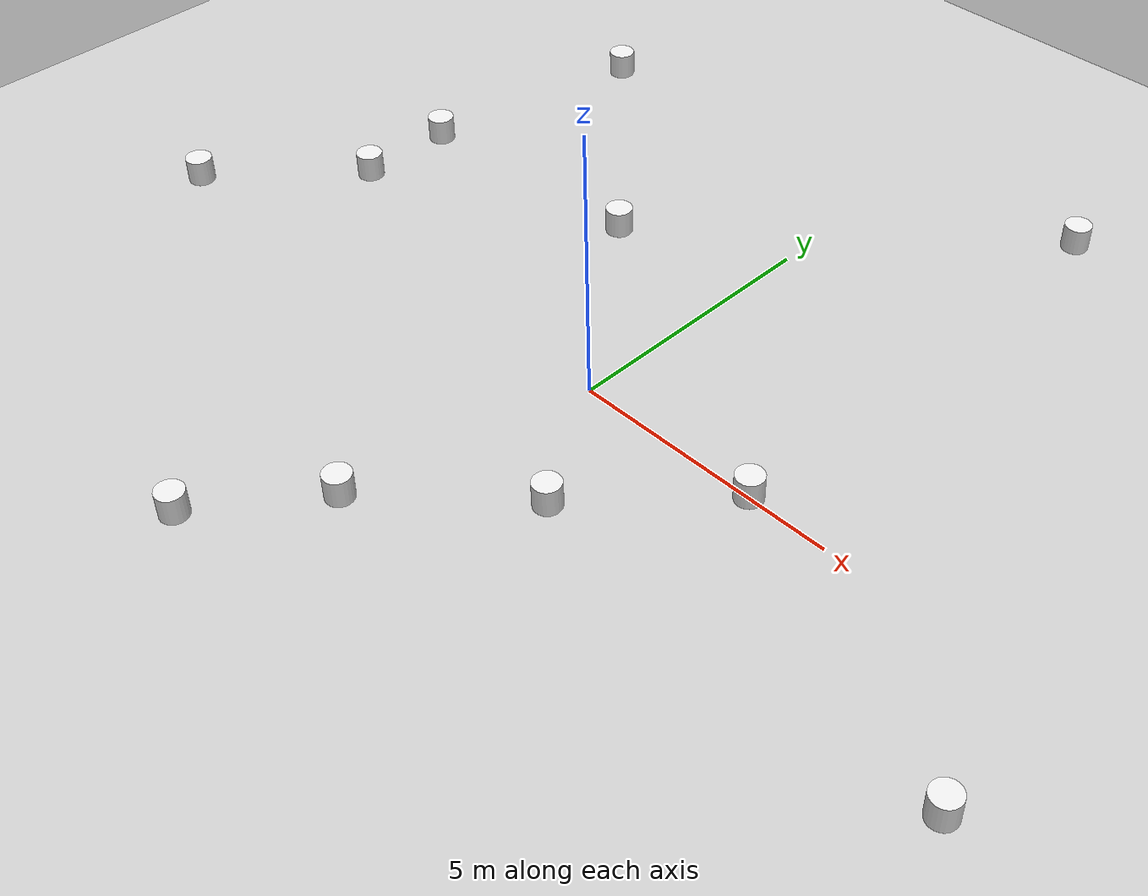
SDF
<sdf version="1.5">
 <world name="default">
  <include><uri>model://sun</uri></include>
  <include><uri>model://ground_plane</uri></include>
  <physics type="ode">
   <max_step_size>0.01</max_step_size>
   <real_time_factor>1</real_time_factor>
   <real_time_update_rate>100</real_time_update_rate>
   <gravity>0 0 -9.8</gravity>
  </physics>
  <model name="obstacle1">
   <pose>-2.8 3.5 0 0 -0 0</pose>
   <link name="obstacle1">
    <collision name="obstacle_1">
     <pose>0 0 0.25 0 0 0</pose>
     <geometry><cylinder><radius>0.25</radius><length>0.5</length></cylinder></geometry>
    </collision>
    <visual name="obstacle_1">
     <pose>0 0 0.25 0 0 0</pose>
     <geometry><cylinder><radius>0.25</radius><length>0.5</length></cylinder></geometry>
     <material>
      <script><uri>file://media/materials/scripts/gazebo.material</uri><name>Gazebo/White</name></script>
     </material>
    </visual>
   </link>
  </model>
  <model name="obstacle2">
   <pose>-7.5 1.4 0 0 -0 0</pose>
   <link name="obstacle2">
    <collision name="obstacle_1">
     <pose>0 0 0.25 0 0 0</pose>
     <geometry><cylinder><radius>0.25</radius><length>0.5</length></cylinder></geometry>
    </collision>
    <visual name="obstacle_1">
     <pose>0 0 0.25 0 0 0</pose>
     <geometry><cylinder><radius>0.25</radius><length>0.5</length></cylinder></geometry>
     <material>
      <script><uri>file://media/materials/scripts/gazebo.material</uri><name>Gazebo/White</name></script>
     </material>
    </visual>
   </link>
  </model>
  <model name="obstacle3">
   <pose>-1 -4.4 0 0 -0 0</pose>
   <link name="obstacle3">
    <collision name="obstacle_1">
     <pose>0 0 0.25 0 0 3</pose>
     <geometry><cylinder><radius>0.25</radius><length>0.5</length></cylinder></geometry>
    </collision>
    <visual name="obstacle_1">
     <pose>0 0 0.25 0 0 0</pose>
     <geometry><cylinder><radius>0.25</radius><length>0.5</length></cylinder></geometry>
     <material>
      <script><uri>file://media/materials/scripts/gazebo.material</uri><name>Gazebo/White</name></script>
     </material>
    </visual>
   </link>
  </model>
  <model name="obstacle4">
   <pose>1.41 -2.2775 0 0 -0 0</pose>
   <link name="obstacle4">
    <collision name="obstacle_1">
     <pose>0 0 0.25 0 0 3</pose>
     <geometry><cylinder><radius>0.25</radius><length>0.5</length></cylinder></geometry>
    </collision>
    <visual name="obstacle_1">
     <pose>0 0 0.25 0 0 0</pose>
     <geometry><cylinder><radius>0.25</radius><length>0.5</length></cylinder></geometry>
     <material>
      <script><uri>file://media/materials/scripts/gazebo.material</uri><name>Gazebo/White</name></script>
     </material>
    </visual>
   </link>
  </model>
  <model name="obstacle5">
   <pose>9.0 -2.5 0 0 -0 0</pose>
   <link name="obstacle5">
    <collision name="obstacle_1">
     <pose>0 0 0.25 0 0 3</pose>
     <geometry><cylinder><radius>0.25</radius><length>0.5</length></cylinder></geometry>
    </collision>
    <visual name="obstacle_1">
     <pose>0 0 0.25 0 0 0</pose>
     <geometry><cylinder><radius>0.25</radius><length>0.5</length></cylinder></geometry>
     <material>
      <script><uri>file://media/materials/scripts/gazebo.material</uri><name>Gazebo/White</name></script>
     </material>
    </visual>
   </link>
  </model>
  <model name="obstacle6">
   <pose>-7.5 3.2 0 0 -0 0</pose>
   <link name="obstacle6">
    <collision name="obstacle_1">
     <pose>0 0 0.25 0 0 3</pose>
     <geometry><cylinder><radius>0.25</radius><length>0.5</length></cylinder></geometry>
    </collision>
    <visual name="obstacle_1">
     <pose>0 0 0.25 0 0 0</pose>
     <geometry><cylinder><radius>0.25</radius><length>0.5</length></cylinder></geometry>
     <material>
      <script><uri>file://media/materials/scripts/gazebo.material</uri><name>Gazebo/White</name></script>
     </material>
    </visual>
   </link>
  </model>
  <model name="obstacle7">
   <pose>-9.7 -1.0 0 0 -0 0</pose>
   <link name="obstacle7">
    <collision name="obstacle_1">
     <pose>0 0 0.25 0 0 3</pose>
     <geometry><cylinder><radius>0.25</radius><length>0.5</length></cylinder></geometry>
    </collision>
    <visual name="obstacle_1">
     <pose>0 0 0.25 0 0 0</pose>
     <geometry><cylinder><radius>0.25</radius><length>0.5</length></cylinder></geometry>
     <material>
      <script><uri>file://media/materials/scripts/gazebo.material</uri><name>Gazebo/White</name></script>
     </material>
    </visual>
   </link>
  </model>
  <model name="obstacle8">
   <pose>-6.7 7.5 0 0 -0 0</pose>
   <link name="obstacle8">
    <collision name="obstacle_1">
     <pose>0 0 0.25 0 0 3</pose>
     <geometry><cylinder><radius>0.25</radius><length>0.5</length></cylinder></geometry>
    </collision>
    <visual name="obstacle_1">
     <pose>0 0 0.25 0 0 0</pose>
     <geometry><cylinder><radius>0.25</radius><length>0.5</length></cylinder></geometry>
     <material>
      <script><uri>file://media/materials/scripts/gazebo.material</uri><name>Gazebo/White</name></script>
     </material>
    </visual>
   </link>
  </model>
  <model name="obstacle9">
   <pose>3.5 9.0 0 0 -0 0</pose>
   <link name="obstacle9">
    <collision name="obstacle_1">
     <pose>0 0 0.25 0 0 3</pose>
     <geometry><cylinder><radius>0.25</radius><length>0.5</length></cylinder></geometry>
    </collision>
    <visual name="obstacle_1">
     <pose>0 0 0.25 0 0 0</pose>
     <geometry><cylinder><radius>0.25</radius><length>0.5</length></cylinder></geometry>
     <material>
      <script><uri>file://media/materials/scripts/gazebo.material</uri><name>Gazebo/White</name></script>
     </material>
    </visual>
   </link>
  </model>
  <model name="obstacle10">
   <pose>-2.5 -6.4 0 0 -0 0</pose>
   <link name="obstacle10">
    <collision name="obstacle_1">
     <pose>0 0 0.25 0 0 3</pose>
     <geometry><cylinder><radius>0.25</radius><length>0.5</length></cylinder></geometry>
    </collision>
    <visual name="obstacle_1">
     <pose>0 0 0.25 0 0 0</pose>
     <geometry><cylinder><radius>0.25</radius><length>0.5</length></cylinder></geometry>
     <material>
      <script><uri>file://media/materials/scripts/gazebo.material</uri><name>Gazebo/White</name></script>
     </material>
    </visual>
   </link>
  </model>
  <model name="obstacle11">
   <pose>3.5 -0.0 0 0 -0 0</pose>
   <link name="obstacle10">
    <collision name="obstacle_1">
     <pose>0 0 0.25 0 0 3</pose>
     <geometry><cylinder><radius>0.25</radius><length>0.5</length></cylinder></geometry>
    </collision>
    <visual name="obstacle_1">
     <pose>0 0 0.25 0 0 0</pose>
     <geometry><cylinder><radius>0.25</radius><length>0.5</length></cylinder></geometry>
     <material>
      <script><uri>file://media/materials/scripts/gazebo.material</uri><name>Gazebo/White</name></script>
     </material>
    </visual>
   </link>
  </model>
 </world>
</sdf>
